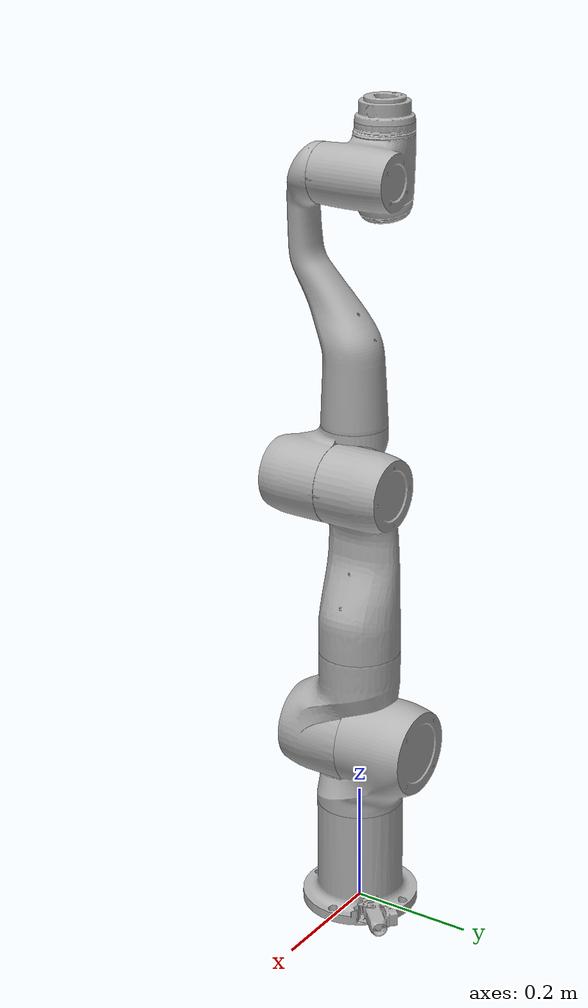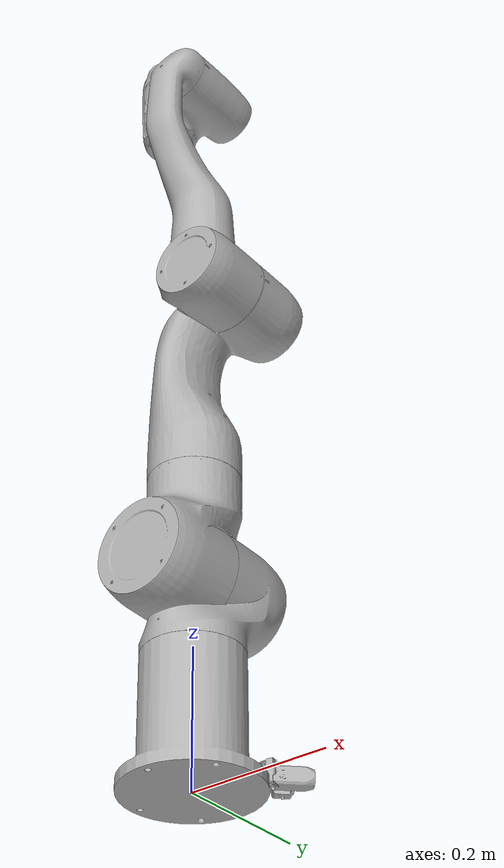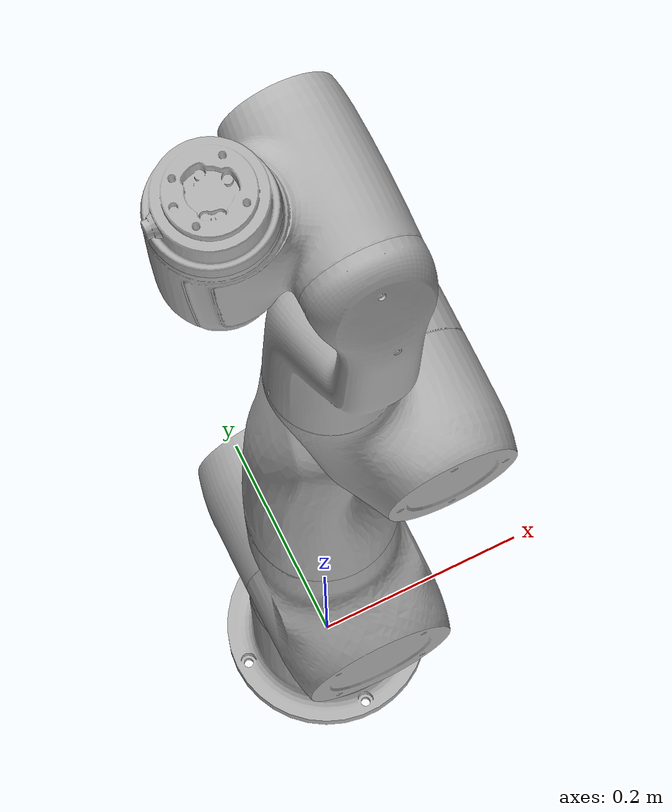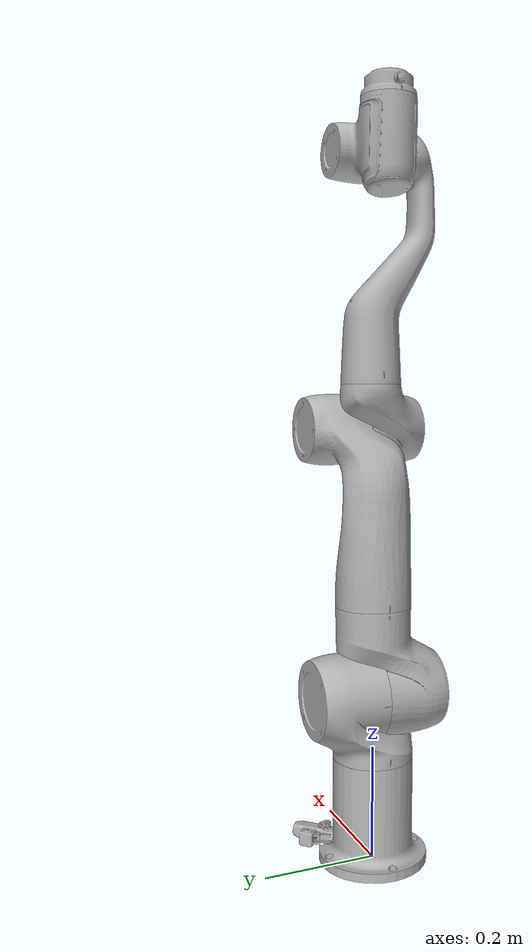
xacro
<?xml version="1.0"?>
<robot xmlns:xacro="http://ros.org/wiki/xacro" name="medical" >

  <xacro:arg name="transmission_hw_interface" default="hardware_interface/PositionJointInterface"/>

  <!-- common stuff -->
  <xacro:include filename="$(find medical_description)/urdf/common.gazebo.xacro" />

  <!-- medical -->
  <xacro:include filename="$(find medical_description)/urdf/medical.urdf.xacro" />

  <!-- arm -->
  <xacro:medical_robot prefix="" transmission_hw_interface="$(arg transmission_hw_interface)" />

  <link name="world" />

  <joint name="world_joint" type="fixed">
    <parent link="world" />
    <child link = "base_link" />
    <origin xyz="0.0 0.0 0.0" rpy="0.0 0.0 0.0" />
  </joint>

</robot>

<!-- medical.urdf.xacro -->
<robot xmlns:xacro="http://ros.org/wiki/xacro">

  <xacro:include filename="$(find medical_description)/urdf/medical.transmission.xacro" />
  <xacro:include filename="$(find medical_description)/urdf/medical.gazebo.xacro" />

  <xacro:macro name="medical_robot" params="prefix
    joint1_limitL:=${-179.0/180.0*pi}  joint1_limitU:=${179.0/180.0*pi}
    joint2_limitL:=${-90.0/180.0*pi}    joint2_limitU:=${90.0/180.0*pi}
    joint3_limitL:=${-179.0/180.0*pi}    joint3_limitU:=${179.0/180.0*pi}
    joint4_limitL:=${0.0/180.0*pi}    joint4_limitU:=${175.0/180.0*pi}
    joint5_limitL:=${-179.0/180.0*pi}  joint5_limitU:=${179.0/180.0*pi}
    joint6_limitL:=${-179.0/180.0*pi}    joint6_limitU:=${179.0/180.0*pi}
    joint7_limitL:=${-179.0/180.0*pi}    joint7_limitU:=${179.0/180.0*pi}
    transmission_hw_interface:=hardware_interface/PositionJointInterface
    safety_limits:=false safety_pos_margin:=0.15
    safety_k_position:=20 safety_k_velocity:=0.0">

    <xacro:property name="d1" value="-0.2985" />
    <xacro:property name="d2" value="0.0000" />
    <xacro:property name="d3" value="-0.4591" />
    <xacro:property name="d4" value="0.0000" />
    <xacro:property name="d5" value="-0.4574" />
    <xacro:property name="d6" value="-0.0050" />
    <xacro:property name="d7" value="-0.1059" />

    <xacro:property name="a1" value="0.0000" />
    <xacro:property name="a2" value="0.0000" />
    <xacro:property name="a3" value="0.0000" />
    <xacro:property name="a4" value="0.0650" />
    <xacro:property name="a5" value="-0.0528" />
    <xacro:property name="a6" value="0.0000" />
    <xacro:property name="a7" value="0.0770" />

    <xacro:property name="alpha1" value="${pi}" />
    <xacro:property name="alpha2" value="${0.5*pi}" />
    <xacro:property name="alpha3" value="${-0.5*pi}" />
    <xacro:property name="alpha4" value="${0.5*pi}" />
    <xacro:property name="alpha5" value="${-0.5*pi}" />
    <xacro:property name="alpha6" value="${-0.5*pi}" />
    <xacro:property name="alpha7" value="${-0.5*pi}" />

    <xacro:property name="joint1_effort" value="235.0" />
    <xacro:property name="joint2_effort" value="235.0" />
    <xacro:property name="joint3_effort" value="111.0" />
    <xacro:property name="joint4_effort" value="111.0" />
    <xacro:property name="joint5_effort" value="90.0" />
    <xacro:property name="joint6_effort" value="90.0" />
    <xacro:property name="joint7_effort" value="90.0" />

    <xacro:property name="joint_vel" value="${pi}" />
    <xacro:property name="joint_damp" value="0.0" />
    <xacro:property name="joint_frict" value="0.1" />

    <link name="${prefix}base_link">
      <inertial>
        <origin xyz="0.0 0.0 0.0" rpy="0 0 0" />
        <mass value="5.0" />
        <inertia
          ixx="0.0"
          ixy="0.0"
          ixz="0.0"
          iyy="0.0"
          iyz="0.0"
          izz="0.0" />
      </inertial>
      <visual>
        <origin yz="0 0 0" rpy="0 0 0" />
        <geometry>
          <mesh filename="package://medical_description/meshes/base_link.STL" />
        </geometry>
        <material name="LightGrey">
          <color rgba="0.7 0.7 0.7 1" />
        </material>
      </visual>
      <collision>
        <origin xyz="0 0 0" rpy="0 0 0" />
        <geometry>
          <mesh filename="package://medical_description/meshes/base_link.STL" />
        </geometry>
      </collision>
    </link>
    <joint name="${prefix}joint1" type="revolute">
      <origin xyz="0 0 ${-d1}" rpy="${alpha1} 0 0" />
      <parent link="${prefix}base_link" />
      <child link="${prefix}link1" />
      <axis xyz="0 0 1" />
      <limit lower="${joint1_limitL}" upper="${joint1_limitU}" effort="${joint1_effort}" velocity="${joint_vel}" />
      <xacro:if value="${safety_limits}">
        <safety_controller soft_lower_limit="${joint1_limitL + safety_pos_margin}" soft_upper_limit="${joint1_limitU - safety_pos_margin}"
          k_position="${safety_k_position}" k_velocity="${safety_k_velocity}"/>
      </xacro:if>
      <dynamics damping="${joint_damp}" friction="${joint_frict}"/>
    </joint>
    <link name="${prefix}link1">
      <inertial>
        <origin xyz="-0.000070 0.000079 0.028212" rpy="0 0 0" />
        <mass value="5.276969" />
        <inertia
          ixx="0.033181"
          ixy="-0.000074"
          ixz="-0.000001"
          iyy="0.029056"
          iyz="-0.000013"
          izz="0.017496" />
      </inertial>
      <visual>
        <origin xyz="0 0 0" rpy="0 0 0" />
        <geometry>
          <mesh filename="package://medical_description/meshes/link1.STL" />
        </geometry>
        <material name="LightGrey">
          <color rgba="0.7 0.7 0.7 1" />
        </material>
      </visual>
      <collision>
        <origin xyz="0 0 0" rpy="0 0 0" />
        <geometry>
          <mesh filename="package://medical_description/meshes/link1.STL" />
        </geometry>
      </collision>
    </link>
    <joint name="${prefix}joint2" type="revolute">
      <origin xyz="0 0 0" rpy="${alpha2} 0 0" />
      <parent link="${prefix}link1" />
      <child link="${prefix}link2" />
      <axis xyz="0 0 1" />
      <limit lower="${joint2_limitL}" upper="${joint2_limitU}" effort="${joint2_effort}" velocity="${joint_vel}" />
      <xacro:if value="${safety_limits}">
        <safety_controller soft_lower_limit="${joint2_limitL + safety_pos_margin}" soft_upper_limit="${joint2_limitU - safety_pos_margin}"
          k_position="${safety_k_position}" k_velocity="${safety_k_velocity}"/>
      </xacro:if>
      <dynamics damping="${joint_damp}" friction="${joint_frict}"/>
    </joint>
    <link name="${prefix}link2">
      <inertial>
        <origin xyz="-0.000010 -0.052855 -0.039076" rpy="0 0 0" />
        <mass value="4.459064" />
        <inertia
          ixx="0.049755"
          ixy="-0.000002"
          ixz="-0.000001"
          iyy="0.022625"
          iyz="-0.001039"
          izz="0.040231" />
      </inertial>
      <visual>
        <origin xyz="0 0 0" rpy="0 0 0" />
        <geometry>
          <mesh filename="package://medical_description/meshes/link2.STL" />
        </geometry>
        <material name="LightGrey">
          <color rgba="0.7 0.7 0.7 1" />
        </material>
      </visual>
      <collision>
        <origin xyz="0 0 0" rpy="0 0 0" />
        <geometry>
          <mesh filename="package://medical_description/meshes/link2.STL" />
        </geometry>
      </collision>
    </link>
    <joint name="${prefix}joint3" type="revolute">
      <origin xyz="0 ${d3} 0" rpy="${alpha3} 0 0" />
      <parent link="${prefix}link2" />
      <child link="${prefix}link3" />
      <axis xyz="0 0 1" />
      <limit lower="${joint3_limitL}" upper="${joint3_limitU}" effort="${joint3_effort}" velocity="${joint_vel}" />
      <xacro:if value="${safety_limits}">
        <safety_controller soft_lower_limit="${joint3_limitL + safety_pos_margin}" soft_upper_limit="${joint3_limitU - safety_pos_margin}"
          k_position="${safety_k_position}" k_velocity="${safety_k_velocity}"/>
      </xacro:if>
      <dynamics damping="${joint_damp}" friction="${joint_frict}"/>
    </joint>
    <link name="${prefix}link3">
      <inertial>
        <origin xyz="0.023687 -0.002467 0.130062" rpy="0 0 0" />
        <mass value="6.496278" />
        <inertia
          ixx="0.230578"
          ixy="0.000978"
          ixz="0.002695"
          iyy="0.238465"
          iyz="0.000064"
          izz="0.027765" />
      </inertial>
      <visual>
        <origin xyz="0 0 0" rpy="0 0 0" />
        <geometry>
          <mesh filename="package://medical_description/meshes/link3.STL" />
        </geometry>
        <material name="LightGrey">
          <color rgba="0.7 0.7 0.7 1" />
        </material>
      </visual>
      <collision>
        <origin xyz="0 0 0" rpy="0 0 0" />
        <geometry>
          <mesh filename="package://medical_description/meshes/link3.STL" />
        </geometry>
      </collision>
    </link>
    <joint name="${prefix}joint4" type="revolute">
      <origin xyz="${a4} 0 0" rpy="${alpha4} 0 0" />
      <parent link="${prefix}link3" />
      <child link="${prefix}link4" />
      <axis xyz="0 0 1" />
      <limit lower="${joint4_limitL}" upper="${joint4_limitU}" effort="${joint4_effort}" velocity="${joint_vel}" />
      <xacro:if value="${safety_limits}">
        <safety_controller soft_lower_limit="${joint4_limitL + safety_pos_margin}" soft_upper_limit="${joint4_limitU - safety_pos_margin}"
          k_position="${safety_k_position}" k_velocity="${safety_k_velocity}"/>
      </xacro:if>
      <dynamics damping="${joint_damp}" friction="${joint_frict}"/>
    </joint>
    <link name="${prefix}link4">
      <inertial>
        <origin xyz="-0.027918 -0.033467 -0.037252" rpy="0 0 0" />
        <mass value="2.591424" />
        <inertia
          ixx="0.017668"
          ixy="-0.004810"
          ixz="-0.000593"
          iyy="0.014320"
          iyz="-0.000169"
          izz="0.015905" />
      </inertial>
      <visual>
        <origin xyz="0 0 0" rpy="0 0 0" />
        <geometry>
          <mesh filename="package://medical_description/meshes/link4.STL" />
        </geometry>
        <material name="LightGrey">
          <color rgba="0.7 0.7 0.7 1" />
        </material>
      </visual>
      <collision>
        <origin xyz="0 0 0" rpy="0 0 0" />
        <geometry>
          <mesh filename="package://medical_description/meshes/link4.STL" />
        </geometry>
      </collision>
    </link>
    <joint name="${prefix}joint5" type="revolute">
      <origin xyz="${a5} ${d5} 0" rpy="${alpha5} 0 0" />
      <parent link="${prefix}link4" />
      <child link="${prefix}link5" />
      <axis xyz="0 0 1" />
      <limit lower="${joint5_limitL}" upper="${joint5_limitU}" effort="${joint5_effort}" velocity="${joint_vel}" />
      <xacro:if value="${safety_limits}">
        <safety_controller soft_lower_limit="${joint5_limitL + safety_pos_margin}" soft_upper_limit="${joint5_limitU - safety_pos_margin}"
          k_position="${safety_k_position}" k_velocity="${safety_k_velocity}"/>
      </xacro:if>
      <dynamics damping="${joint_damp}" friction="${joint_frict}"/>
    </joint>
    <link name="${prefix}link5">
      <inertial>
        <origin xyz="-0.001682 0.028170 0.195370" rpy="0 0 0" />
        <mass value="2.646827" />
        <inertia
          ixx="0.159676"
          ixy="0.000283"
          ixz="0.000667"
          iyy="0.154456"
          iyz="-0.005689"
          izz="0.008115" />
      </inertial>
      <visual>
        <origin xyz="0 0 0" rpy="0 0 0" />
        <geometry>
          <mesh filename="package://medical_description/meshes/link5.STL" />
        </geometry>
        <material name="LightGrey">
          <color rgba="0.7 0.7 0.7 1" />
        </material>
      </visual>
      <collision>
        <origin xyz="0 0 0" rpy="0 0 0" />
        <geometry>
          <mesh filename="package://medical_description/meshes/link5.STL" />
        </geometry>
      </collision>
    </link>
    <joint name="${prefix}joint6" type="revolute">
      <origin xyz="0 ${d6} 0" rpy="${alpha6} ${pi} 0" />
      <parent link="${prefix}link5" />
      <child link="${prefix}link6" />
      <axis xyz="0 0 1" />
      <limit lower="${joint6_limitL}" upper="${joint6_limitU}" effort="${joint6_effort}" velocity="${joint_vel}" />
      <xacro:if value="${safety_limits}">
        <safety_controller soft_lower_limit="${joint6_limitL + safety_pos_margin}" soft_upper_limit="${joint6_limitU - safety_pos_margin}"
          k_position="${safety_k_position}" k_velocity="${safety_k_velocity}"/>
      </xacro:if>
      <dynamics damping="${joint_damp}" friction="${joint_frict}"/>
    </joint>
    <link name="${prefix}link6">
      <inertial>
        <origin xyz="0.040486 -0.006591 0.003474" rpy="0 0 0" />
        <mass value="2.270728" />
        <inertia
          ixx="0.004812"
          ixy="0.001171"
          ixz="0.000014"
          iyy="0.010848"
          iyz="0.000007"
          izz="0.011015" />
      </inertial>
      <visual>
        <origin xyz="0 0 0" rpy="0 0 0" />
        <geometry>
          <mesh filename="package://medical_description/meshes/link6.STL" />
        </geometry>
        <material name="LightGrey">
          <color rgba="0.7 0.7 0.7 1" />
        </material>
      </visual>
      <collision>
        <origin xyz="0 0 0" rpy="0 0 0" />
        <geometry>
          <mesh filename="package://medical_description/meshes/link6.STL" />
        </geometry>
      </collision>
    </link>
    <joint name="${prefix}joint7" type="revolute">
      <origin xyz="${a7} ${d7} 0" rpy="${alpha7} 0 0" />
      <parent link="${prefix}link6" />
      <child link="${prefix}link7" />
      <axis xyz="0 0 1" />
      <limit lower="${joint7_limitL}" upper="${joint7_limitU}" effort="${joint7_effort}" velocity="${joint_vel}" />
      <xacro:if value="${safety_limits}">
        <safety_controller soft_lower_limit="${joint7_limitL + safety_pos_margin}" soft_upper_limit="${joint7_limitU - safety_pos_margin}"
          k_position="${safety_k_position}" k_velocity="${safety_k_velocity}"/>
      </xacro:if>
      <dynamics damping="${joint_damp}" friction="${joint_frict}"/>
    </joint>
    <link name="${prefix}link7">
      <inertial>
        <origin xyz="0.000166 0.005252 0.036626" rpy="0 0 0" />
        <mass value="0.559541" />
        <inertia
          ixx="0.001669"
          ixy="0.000014"
          ixz="-0.000001"
          iyy="0.001503"
          iyz="-0.000053"
          izz="0.000531" />
      </inertial>
      <visual>
        <origin xyz="0 0 0" rpy="0 0 0" />
        <geometry>
          <mesh filename="package://medical_description/meshes/link7.STL" />
        </geometry>
        <material name="LightGrey">
          <color rgba="0.7 0.7 0.7 1" />
        </material>
      </visual>
      <collision>
        <origin xyz="0 0 0" rpy="0 0 0" />
        <geometry>
          <mesh filename="package://medical_description/meshes/link7.STL" />
        </geometry>
      </collision>
    </link>

    <joint name="${prefix}joint_ee" type="fixed">
    <origin xyz="0.075 -0.078 -0.073" rpy="0.0 0 -1.5708" />
      <parent link="${prefix}link7" />
      <child link="${prefix}link_ee" />

    </joint>

    <link name="${prefix}link_ee">

    </link>

    <xacro:medical_arm_transmission prefix="${prefix}" hw_interface="${transmission_hw_interface}" />
    <xacro:medical_arm_gazebo prefix="${prefix}" />

  </xacro:macro>
</robot>
